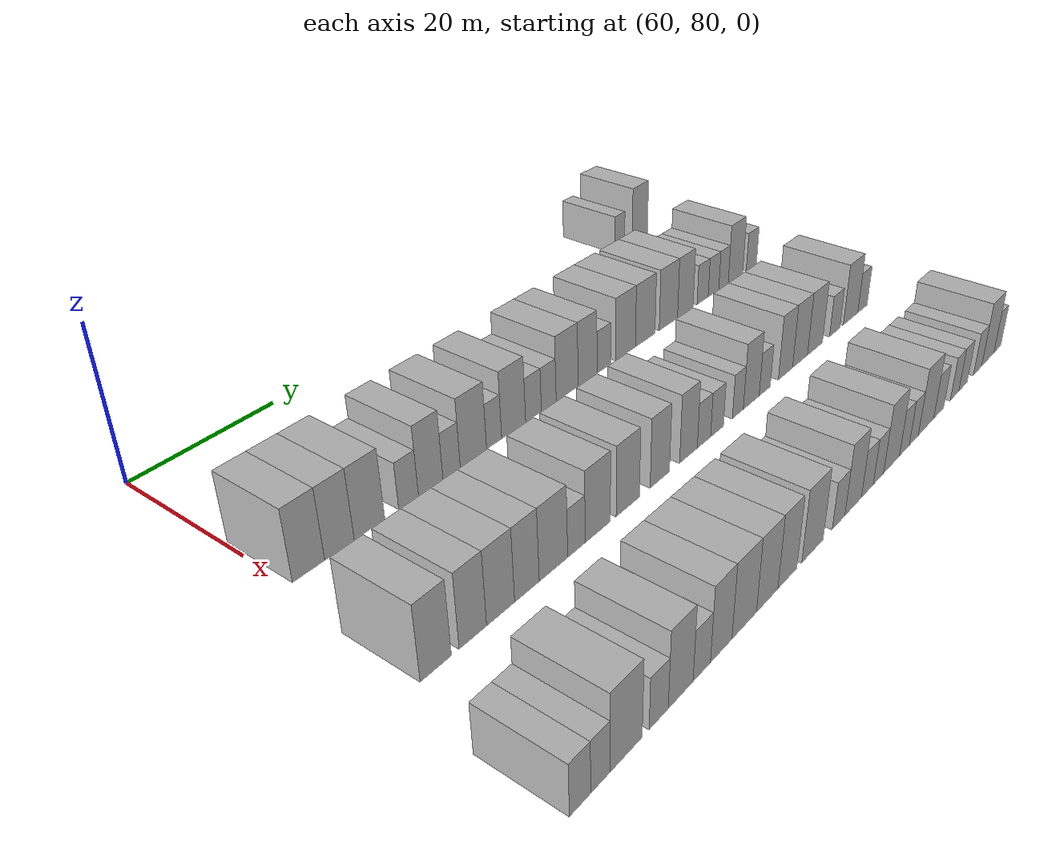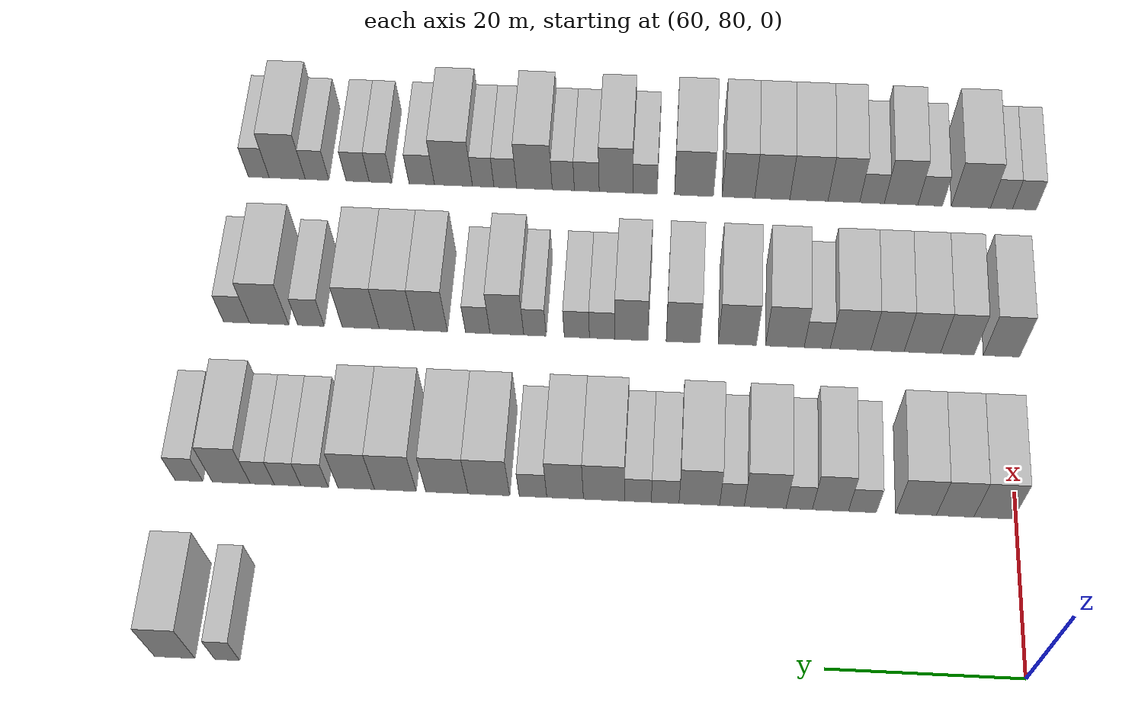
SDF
<sdf version="1.6">
 <world name="default">
  <model name="building_492">
   <static>1</static>
   <pose>63.0000 159.6854 0 0.000000 0.000000 0.000000</pose>
   <link name="link">
    <pose>0 0 3.00 0 0 0</pose>
    <collision name="collision"><geometry><box><size>10.0000 2.5031 6.0000</size></box></geometry></collision>
    <visual name="visual">
     <cast_shadows>0</cast_shadows>
     <geometry><box><size>10.0000 2.5031 6.0000</size></box></geometry>
     <material>
      <script>
       <uri>model://HANNAS_wall/materials/scripts</uri>
       <uri>model://HANNAS_wall/materials/textures</uri>
       <name>vrc/HANNAS_wall</name>
      </script>
     </material>
    </visual>
   </link>
  </model>
  <model name="building_493">
   <static>1</static>
   <pose>63.0000 164.9732 0 0.000000 0.000000 0.000000</pose>
   <link name="link">
    <pose>0 0 4.50 0 0 0</pose>
    <collision name="collision"><geometry><box><size>10.0000 4.0725 9.0000</size></box></geometry></collision>
    <visual name="visual">
     <cast_shadows>0</cast_shadows>
     <geometry><box><size>10.0000 4.0725 9.0000</size></box></geometry>
     <material>
      <script>
       <uri>model://HANNAS_wall/materials/scripts</uri>
       <uri>model://HANNAS_wall/materials/textures</uri>
       <name>vrc/HANNAS_wall</name>
      </script>
     </material>
    </visual>
   </link>
  </model>
  <model name="building_655">
   <static>1</static>
   <pose>82.0000 82.3814 0 0.000000 0.000000 0.000000</pose>
   <link name="link">
    <pose>0 0 4.50 0 0 0</pose>
    <collision name="collision"><geometry><box><size>10.0000 4.0838 9.0000</size></box></geometry></collision>
    <visual name="visual">
     <cast_shadows>0</cast_shadows>
     <geometry><box><size>10.0000 4.0838 9.0000</size></box></geometry>
     <material>
      <script>
       <uri>model://HANNAS_wall/materials/scripts</uri>
       <uri>model://HANNAS_wall/materials/textures</uri>
       <name>vrc/HANNAS_wall</name>
      </script>
     </material>
    </visual>
   </link>
  </model>
  <model name="building_656">
   <static>1</static>
   <pose>82.0000 86.3742 0 0.000000 0.000000 0.000000</pose>
   <link name="link">
    <pose>0 0 4.50 0 0 0</pose>
    <collision name="collision"><geometry><box><size>10.0000 3.9017 9.0000</size></box></geometry></collision>
    <visual name="visual">
     <cast_shadows>0</cast_shadows>
     <geometry><box><size>10.0000 3.9017 9.0000</size></box></geometry>
     <material>
      <script>
       <uri>model://HANNAS_wall/materials/scripts</uri>
       <uri>model://HANNAS_wall/materials/textures</uri>
       <name>vrc/HANNAS_wall</name>
      </script>
     </material>
    </visual>
   </link>
  </model>
  <model name="building_657">
   <static>1</static>
   <pose>82.0000 90.4457 0 0.000000 0.000000 0.000000</pose>
   <link name="link">
    <pose>0 0 4.50 0 0 0</pose>
    <collision name="collision"><geometry><box><size>10.0000 4.2413 9.0000</size></box></geometry></collision>
    <visual name="visual">
     <cast_shadows>0</cast_shadows>
     <geometry><box><size>10.0000 4.2413 9.0000</size></box></geometry>
     <material>
      <script>
       <uri>model://HANNAS_wall/materials/scripts</uri>
       <uri>model://HANNAS_wall/materials/textures</uri>
       <name>vrc/HANNAS_wall</name>
      </script>
     </material>
    </visual>
   </link>
  </model>
  <model name="building_658">
   <static>1</static>
   <pose>82.0000 96.0283 0 0.000000 0.000000 0.000000</pose>
   <link name="link">
    <pose>0 0 3.00 0 0 0</pose>
    <collision name="collision"><geometry><box><size>10.0000 2.9239 6.0000</size></box></geometry></collision>
    <visual name="visual">
     <cast_shadows>0</cast_shadows>
     <geometry><box><size>10.0000 2.9239 6.0000</size></box></geometry>
     <material>
      <script>
       <uri>model://HANNAS_wall/materials/scripts</uri>
       <uri>model://HANNAS_wall/materials/textures</uri>
       <name>vrc/HANNAS_wall</name>
      </script>
     </material>
    </visual>
   </link>
  </model>
  <model name="building_659">
   <static>1</static>
   <pose>82.0000 99.3657 0 0.000000 0.000000 0.000000</pose>
   <link name="link">
    <pose>0 0 4.50 0 0 0</pose>
    <collision name="collision"><geometry><box><size>10.0000 3.7510 9.0000</size></box></geometry></collision>
    <visual name="visual">
     <cast_shadows>0</cast_shadows>
     <geometry><box><size>10.0000 3.7510 9.0000</size></box></geometry>
     <material>
      <script>
       <uri>model://HANNAS_wall/materials/scripts</uri>
       <uri>model://HANNAS_wall/materials/textures</uri>
       <name>vrc/HANNAS_wall</name>
      </script>
     </material>
    </visual>
   </link>
  </model>
  <model name="building_660">
   <static>1</static>
   <pose>82.0000 102.6163 0 0.000000 0.000000 0.000000</pose>
   <link name="link">
    <pose>0 0 3.00 0 0 0</pose>
    <collision name="collision"><geometry><box><size>10.0000 2.7503 6.0000</size></box></geometry></collision>
    <visual name="visual">
     <cast_shadows>0</cast_shadows>
     <geometry><box><size>10.0000 2.7503 6.0000</size></box></geometry>
     <material>
      <script>
       <uri>model://HANNAS_wall/materials/scripts</uri>
       <uri>model://HANNAS_wall/materials/textures</uri>
       <name>vrc/HANNAS_wall</name>
      </script>
     </material>
    </visual>
   </link>
  </model>
  <model name="building_661">
   <static>1</static>
   <pose>82.0000 106.1673 0 0.000000 0.000000 0.000000</pose>
   <link name="link">
    <pose>0 0 4.50 0 0 0</pose>
    <collision name="collision"><geometry><box><size>10.0000 4.3516 9.0000</size></box></geometry></collision>
    <visual name="visual">
     <cast_shadows>0</cast_shadows>
     <geometry><box><size>10.0000 4.3516 9.0000</size></box></geometry>
     <material>
      <script>
       <uri>model://HANNAS_wall/materials/scripts</uri>
       <uri>model://HANNAS_wall/materials/textures</uri>
       <name>vrc/HANNAS_wall</name>
      </script>
     </material>
    </visual>
   </link>
  </model>
  <model name="building_662">
   <static>1</static>
   <pose>82.0000 109.6319 0 0.000000 0.000000 0.000000</pose>
   <link name="link">
    <pose>0 0 3.00 0 0 0</pose>
    <collision name="collision"><geometry><box><size>10.0000 2.5775 6.0000</size></box></geometry></collision>
    <visual name="visual">
     <cast_shadows>0</cast_shadows>
     <geometry><box><size>10.0000 2.5775 6.0000</size></box></geometry>
     <material>
      <script>
       <uri>model://HANNAS_wall/materials/scripts</uri>
       <uri>model://HANNAS_wall/materials/textures</uri>
       <name>vrc/HANNAS_wall</name>
      </script>
     </material>
    </visual>
   </link>
  </model>
  <model name="building_663">
   <static>1</static>
   <pose>82.0000 113.0458 0 0.000000 0.000000 0.000000</pose>
   <link name="link">
    <pose>0 0 4.50 0 0 0</pose>
    <collision name="collision"><geometry><box><size>10.0000 4.2503 9.0000</size></box></geometry></collision>
    <visual name="visual">
     <cast_shadows>0</cast_shadows>
     <geometry><box><size>10.0000 4.2503 9.0000</size></box></geometry>
     <material>
      <script>
       <uri>model://HANNAS_wall/materials/scripts</uri>
       <uri>model://HANNAS_wall/materials/textures</uri>
       <name>vrc/HANNAS_wall</name>
      </script>
     </material>
    </visual>
   </link>
  </model>
  <model name="building_664">
   <static>1</static>
   <pose>82.0000 116.6156 0 0.000000 0.000000 0.000000</pose>
   <link name="link">
    <pose>0 0 3.00 0 0 0</pose>
    <collision name="collision"><geometry><box><size>10.0000 2.8894 6.0000</size></box></geometry></collision>
    <visual name="visual">
     <cast_shadows>0</cast_shadows>
     <geometry><box><size>10.0000 2.8894 6.0000</size></box></geometry>
     <material>
      <script>
       <uri>model://HANNAS_wall/materials/scripts</uri>
       <uri>model://HANNAS_wall/materials/textures</uri>
       <name>vrc/HANNAS_wall</name>
      </script>
     </material>
    </visual>
   </link>
  </model>
  <model name="building_665">
   <static>1</static>
   <pose>82.0000 119.4657 0 0.000000 0.000000 0.000000</pose>
   <link name="link">
    <pose>0 0 3.00 0 0 0</pose>
    <collision name="collision"><geometry><box><size>10.0000 2.8108 6.0000</size></box></geometry></collision>
    <visual name="visual">
     <cast_shadows>0</cast_shadows>
     <geometry><box><size>10.0000 2.8108 6.0000</size></box></geometry>
     <material>
      <script>
       <uri>model://HANNAS_wall/materials/scripts</uri>
       <uri>model://HANNAS_wall/materials/textures</uri>
       <name>vrc/HANNAS_wall</name>
      </script>
     </material>
    </visual>
   </link>
  </model>
  <model name="building_666">
   <static>1</static>
   <pose>82.0000 123.0201 0 0.000000 0.000000 0.000000</pose>
   <link name="link">
    <pose>0 0 4.50 0 0 0</pose>
    <collision name="collision"><geometry><box><size>10.0000 4.2980 9.0000</size></box></geometry></collision>
    <visual name="visual">
     <cast_shadows>0</cast_shadows>
     <geometry><box><size>10.0000 4.2980 9.0000</size></box></geometry>
     <material>
      <script>
       <uri>model://HANNAS_wall/materials/scripts</uri>
       <uri>model://HANNAS_wall/materials/textures</uri>
       <name>vrc/HANNAS_wall</name>
      </script>
     </material>
    </visual>
   </link>
  </model>
  <model name="building_667">
   <static>1</static>
   <pose>82.0000 127.0901 0 0.000000 0.000000 0.000000</pose>
   <link name="link">
    <pose>0 0 4.50 0 0 0</pose>
    <collision name="collision"><geometry><box><size>10.0000 3.8420 9.0000</size></box></geometry></collision>
    <visual name="visual">
     <cast_shadows>0</cast_shadows>
     <geometry><box><size>10.0000 3.8420 9.0000</size></box></geometry>
     <material>
      <script>
       <uri>model://HANNAS_wall/materials/scripts</uri>
       <uri>model://HANNAS_wall/materials/textures</uri>
       <name>vrc/HANNAS_wall</name>
      </script>
     </material>
    </visual>
   </link>
  </model>
  <model name="building_668">
   <static>1</static>
   <pose>82.0000 130.4585 0 0.000000 0.000000 0.000000</pose>
   <link name="link">
    <pose>0 0 3.00 0 0 0</pose>
    <collision name="collision"><geometry><box><size>10.0000 2.8947 6.0000</size></box></geometry></collision>
    <visual name="visual">
     <cast_shadows>0</cast_shadows>
     <geometry><box><size>10.0000 2.8947 6.0000</size></box></geometry>
     <material>
      <script>
       <uri>model://HANNAS_wall/materials/scripts</uri>
       <uri>model://HANNAS_wall/materials/textures</uri>
       <name>vrc/HANNAS_wall</name>
      </script>
     </material>
    </visual>
   </link>
  </model>
  <model name="building_669">
   <static>1</static>
   <pose>82.0000 135.0957 0 0.000000 0.000000 0.000000</pose>
   <link name="link">
    <pose>0 0 4.50 0 0 0</pose>
    <collision name="collision"><geometry><box><size>10.0000 4.3797 9.0000</size></box></geometry></collision>
    <visual name="visual">
     <cast_shadows>0</cast_shadows>
     <geometry><box><size>10.0000 4.3797 9.0000</size></box></geometry>
     <material>
      <script>
       <uri>model://HANNAS_wall/materials/scripts</uri>
       <uri>model://HANNAS_wall/materials/textures</uri>
       <name>vrc/HANNAS_wall</name>
      </script>
     </material>
    </visual>
   </link>
  </model>
  <model name="building_670">
   <static>1</static>
   <pose>82.0000 139.5176 0 0.000000 0.000000 0.000000</pose>
   <link name="link">
    <pose>0 0 4.50 0 0 0</pose>
    <collision name="collision"><geometry><box><size>10.0000 4.4641 9.0000</size></box></geometry></collision>
    <visual name="visual">
     <cast_shadows>0</cast_shadows>
     <geometry><box><size>10.0000 4.4641 9.0000</size></box></geometry>
     <material>
      <script>
       <uri>model://HANNAS_wall/materials/scripts</uri>
       <uri>model://HANNAS_wall/materials/textures</uri>
       <name>vrc/HANNAS_wall</name>
      </script>
     </material>
    </visual>
   </link>
  </model>
  <model name="building_671">
   <static>1</static>
   <pose>82.0000 144.9492 0 0.000000 0.000000 0.000000</pose>
   <link name="link">
    <pose>0 0 4.50 0 0 0</pose>
    <collision name="collision"><geometry><box><size>10.0000 4.3992 9.0000</size></box></geometry></collision>
    <visual name="visual">
     <cast_shadows>0</cast_shadows>
     <geometry><box><size>10.0000 4.3992 9.0000</size></box></geometry>
     <material>
      <script>
       <uri>model://HANNAS_wall/materials/scripts</uri>
       <uri>model://HANNAS_wall/materials/textures</uri>
       <name>vrc/HANNAS_wall</name>
      </script>
     </material>
    </visual>
   </link>
  </model>
  <model name="building_672">
   <static>1</static>
   <pose>82.0000 149.0820 0 0.000000 0.000000 0.000000</pose>
   <link name="link">
    <pose>0 0 4.50 0 0 0</pose>
    <collision name="collision"><geometry><box><size>10.0000 3.8664 9.0000</size></box></geometry></collision>
    <visual name="visual">
     <cast_shadows>0</cast_shadows>
     <geometry><box><size>10.0000 3.8664 9.0000</size></box></geometry>
     <material>
      <script>
       <uri>model://HANNAS_wall/materials/scripts</uri>
       <uri>model://HANNAS_wall/materials/textures</uri>
       <name>vrc/HANNAS_wall</name>
      </script>
     </material>
    </visual>
   </link>
  </model>
  <model name="building_673">
   <static>1</static>
   <pose>82.0000 153.4588 0 0.000000 0.000000 0.000000</pose>
   <link name="link">
    <pose>0 0 3.00 0 0 0</pose>
    <collision name="collision"><geometry><box><size>10.0000 2.8872 6.0000</size></box></geometry></collision>
    <visual name="visual">
     <cast_shadows>0</cast_shadows>
     <geometry><box><size>10.0000 2.8872 6.0000</size></box></geometry>
     <material>
      <script>
       <uri>model://HANNAS_wall/materials/scripts</uri>
       <uri>model://HANNAS_wall/materials/textures</uri>
       <name>vrc/HANNAS_wall</name>
      </script>
     </material>
    </visual>
   </link>
  </model>
  <model name="building_674">
   <static>1</static>
   <pose>82.0000 156.3104 0 0.000000 0.000000 0.000000</pose>
   <link name="link">
    <pose>0 0 3.00 0 0 0</pose>
    <collision name="collision"><geometry><box><size>10.0000 2.8161 6.0000</size></box></geometry></collision>
    <visual name="visual">
     <cast_shadows>0</cast_shadows>
     <geometry><box><size>10.0000 2.8161 6.0000</size></box></geometry>
     <material>
      <script>
       <uri>model://HANNAS_wall/materials/scripts</uri>
       <uri>model://HANNAS_wall/materials/textures</uri>
       <name>vrc/HANNAS_wall</name>
      </script>
     </material>
    </visual>
   </link>
  </model>
  <model name="building_675">
   <static>1</static>
   <pose>82.0000 158.9909 0 0.000000 0.000000 0.000000</pose>
   <link name="link">
    <pose>0 0 3.00 0 0 0</pose>
    <collision name="collision"><geometry><box><size>10.0000 2.5449 6.0000</size></box></geometry></collision>
    <visual name="visual">
     <cast_shadows>0</cast_shadows>
     <geometry><box><size>10.0000 2.5449 6.0000</size></box></geometry>
     <material>
      <script>
       <uri>model://HANNAS_wall/materials/scripts</uri>
       <uri>model://HANNAS_wall/materials/textures</uri>
       <name>vrc/HANNAS_wall</name>
      </script>
     </material>
    </visual>
   </link>
  </model>
  <model name="building_676">
   <static>1</static>
   <pose>82.0000 162.2773 0 0.000000 0.000000 0.000000</pose>
   <link name="link">
    <pose>0 0 4.50 0 0 0</pose>
    <collision name="collision"><geometry><box><size>10.0000 4.0279 9.0000</size></box></geometry></collision>
    <visual name="visual">
     <cast_shadows>0</cast_shadows>
     <geometry><box><size>10.0000 4.0279 9.0000</size></box></geometry>
     <material>
      <script>
       <uri>model://HANNAS_wall/materials/scripts</uri>
       <uri>model://HANNAS_wall/materials/textures</uri>
       <name>vrc/HANNAS_wall</name>
      </script>
     </material>
    </visual>
   </link>
  </model>
  <model name="building_677">
   <static>1</static>
   <pose>82.0000 166.7668 0 0.000000 0.000000 0.000000</pose>
   <link name="link">
    <pose>0 0 3.00 0 0 0</pose>
    <collision name="collision"><geometry><box><size>10.0000 2.9511 6.0000</size></box></geometry></collision>
    <visual name="visual">
     <cast_shadows>0</cast_shadows>
     <geometry><box><size>10.0000 2.9511 6.0000</size></box></geometry>
     <material>
      <script>
       <uri>model://HANNAS_wall/materials/scripts</uri>
       <uri>model://HANNAS_wall/materials/textures</uri>
       <name>vrc/HANNAS_wall</name>
      </script>
     </material>
    </visual>
   </link>
  </model>
  <model name="building_823">
   <static>1</static>
   <pose>101.0000 80.5593 0 0.000000 0.000000 0.000000</pose>
   <link name="link">
    <pose>0 0 4.50 0 0 0</pose>
    <collision name="collision"><geometry><box><size>10.0000 3.9447 9.0000</size></box></geometry></collision>
    <visual name="visual">
     <cast_shadows>0</cast_shadows>
     <geometry><box><size>10.0000 3.9447 9.0000</size></box></geometry>
     <material>
      <script>
       <uri>model://HANNAS_wall/materials/scripts</uri>
       <uri>model://HANNAS_wall/materials/textures</uri>
       <name>vrc/HANNAS_wall</name>
      </script>
     </material>
    </visual>
   </link>
  </model>
  <model name="building_824">
   <static>1</static>
   <pose>101.0000 85.3795 0 0.000000 0.000000 0.000000</pose>
   <link name="link">
    <pose>0 0 4.50 0 0 0</pose>
    <collision name="collision"><geometry><box><size>10.0000 3.6956 9.0000</size></box></geometry></collision>
    <visual name="visual">
     <cast_shadows>0</cast_shadows>
     <geometry><box><size>10.0000 3.6956 9.0000</size></box></geometry>
     <material>
      <script>
       <uri>model://HANNAS_wall/materials/scripts</uri>
       <uri>model://HANNAS_wall/materials/textures</uri>
       <name>vrc/HANNAS_wall</name>
      </script>
     </material>
    </visual>
   </link>
  </model>
  <model name="building_825">
   <static>1</static>
   <pose>101.0000 89.2056 0 0.000000 0.000000 0.000000</pose>
   <link name="link">
    <pose>0 0 4.50 0 0 0</pose>
    <collision name="collision"><geometry><box><size>10.0000 3.9566 9.0000</size></box></geometry></collision>
    <visual name="visual">
     <cast_shadows>0</cast_shadows>
     <geometry><box><size>10.0000 3.9566 9.0000</size></box></geometry>
     <material>
      <script>
       <uri>model://HANNAS_wall/materials/scripts</uri>
       <uri>model://HANNAS_wall/materials/textures</uri>
       <name>vrc/HANNAS_wall</name>
      </script>
     </material>
    </visual>
   </link>
  </model>
  <model name="building_826">
   <static>1</static>
   <pose>101.0000 93.0046 0 0.000000 0.000000 0.000000</pose>
   <link name="link">
    <pose>0 0 4.50 0 0 0</pose>
    <collision name="collision"><geometry><box><size>10.0000 3.6415 9.0000</size></box></geometry></collision>
    <visual name="visual">
     <cast_shadows>0</cast_shadows>
     <geometry><box><size>10.0000 3.6415 9.0000</size></box></geometry>
     <material>
      <script>
       <uri>model://HANNAS_wall/materials/scripts</uri>
       <uri>model://HANNAS_wall/materials/textures</uri>
       <name>vrc/HANNAS_wall</name>
      </script>
     </material>
    </visual>
   </link>
  </model>
  <model name="building_827">
   <static>1</static>
   <pose>101.0000 97.0363 0 0.000000 0.000000 0.000000</pose>
   <link name="link">
    <pose>0 0 4.50 0 0 0</pose>
    <collision name="collision"><geometry><box><size>10.0000 4.4219 9.0000</size></box></geometry></collision>
    <visual name="visual">
     <cast_shadows>0</cast_shadows>
     <geometry><box><size>10.0000 4.4219 9.0000</size></box></geometry>
     <material>
      <script>
       <uri>model://HANNAS_wall/materials/scripts</uri>
       <uri>model://HANNAS_wall/materials/textures</uri>
       <name>vrc/HANNAS_wall</name>
      </script>
     </material>
    </visual>
   </link>
  </model>
  <model name="building_828">
   <static>1</static>
   <pose>101.0000 100.6766 0 0.000000 0.000000 0.000000</pose>
   <link name="link">
    <pose>0 0 3.00 0 0 0</pose>
    <collision name="collision"><geometry><box><size>10.0000 2.8587 6.0000</size></box></geometry></collision>
    <visual name="visual">
     <cast_shadows>0</cast_shadows>
     <geometry><box><size>10.0000 2.8587 6.0000</size></box></geometry>
     <material>
      <script>
       <uri>model://HANNAS_wall/materials/scripts</uri>
       <uri>model://HANNAS_wall/materials/textures</uri>
       <name>vrc/HANNAS_wall</name>
      </script>
     </material>
    </visual>
   </link>
  </model>
  <model name="building_829">
   <static>1</static>
   <pose>101.0000 104.2255 0 0.000000 0.000000 0.000000</pose>
   <link name="link">
    <pose>0 0 4.50 0 0 0</pose>
    <collision name="collision"><geometry><box><size>10.0000 4.2391 9.0000</size></box></geometry></collision>
    <visual name="visual">
     <cast_shadows>0</cast_shadows>
     <geometry><box><size>10.0000 4.2391 9.0000</size></box></geometry>
     <material>
      <script>
       <uri>model://HANNAS_wall/materials/scripts</uri>
       <uri>model://HANNAS_wall/materials/textures</uri>
       <name>vrc/HANNAS_wall</name>
      </script>
     </material>
    </visual>
   </link>
  </model>
  <model name="building_830">
   <static>1</static>
   <pose>101.0000 109.4386 0 0.000000 0.000000 0.000000</pose>
   <link name="link">
    <pose>0 0 4.50 0 0 0</pose>
    <collision name="collision"><geometry><box><size>10.0000 4.1871 9.0000</size></box></geometry></collision>
    <visual name="visual">
     <cast_shadows>0</cast_shadows>
     <geometry><box><size>10.0000 4.1871 9.0000</size></box></geometry>
     <material>
      <script>
       <uri>model://HANNAS_wall/materials/scripts</uri>
       <uri>model://HANNAS_wall/materials/textures</uri>
       <name>vrc/HANNAS_wall</name>
      </script>
     </material>
    </visual>
   </link>
  </model>
  <model name="building_831">
   <static>1</static>
   <pose>101.0000 115.3856 0 0.000000 0.000000 0.000000</pose>
   <link name="link">
    <pose>0 0 4.50 0 0 0</pose>
    <collision name="collision"><geometry><box><size>10.0000 3.7068 9.0000</size></box></geometry></collision>
    <visual name="visual">
     <cast_shadows>0</cast_shadows>
     <geometry><box><size>10.0000 3.7068 9.0000</size></box></geometry>
     <material>
      <script>
       <uri>model://HANNAS_wall/materials/scripts</uri>
       <uri>model://HANNAS_wall/materials/textures</uri>
       <name>vrc/HANNAS_wall</name>
      </script>
     </material>
    </visual>
   </link>
  </model>
  <model name="building_832">
   <static>1</static>
   <pose>101.0000 121.0454 0 0.000000 0.000000 0.000000</pose>
   <link name="link">
    <pose>0 0 4.50 0 0 0</pose>
    <collision name="collision"><geometry><box><size>10.0000 3.6127 9.0000</size></box></geometry></collision>
    <visual name="visual">
     <cast_shadows>0</cast_shadows>
     <geometry><box><size>10.0000 3.6127 9.0000</size></box></geometry>
     <material>
      <script>
       <uri>model://HANNAS_wall/materials/scripts</uri>
       <uri>model://HANNAS_wall/materials/textures</uri>
       <name>vrc/HANNAS_wall</name>
      </script>
     </material>
    </visual>
   </link>
  </model>
  <model name="building_833">
   <static>1</static>
   <pose>101.0000 124.2596 0 0.000000 0.000000 0.000000</pose>
   <link name="link">
    <pose>0 0 3.00 0 0 0</pose>
    <collision name="collision"><geometry><box><size>10.0000 2.8157 6.0000</size></box></geometry></collision>
    <visual name="visual">
     <cast_shadows>0</cast_shadows>
     <geometry><box><size>10.0000 2.8157 6.0000</size></box></geometry>
     <material>
      <script>
       <uri>model://HANNAS_wall/materials/scripts</uri>
       <uri>model://HANNAS_wall/materials/textures</uri>
       <name>vrc/HANNAS_wall</name>
      </script>
     </material>
    </visual>
   </link>
  </model>
  <model name="building_834">
   <static>1</static>
   <pose>101.0000 127.0528 0 0.000000 0.000000 0.000000</pose>
   <link name="link">
    <pose>0 0 3.00 0 0 0</pose>
    <collision name="collision"><geometry><box><size>10.0000 2.7708 6.0000</size></box></geometry></collision>
    <visual name="visual">
     <cast_shadows>0</cast_shadows>
     <geometry><box><size>10.0000 2.7708 6.0000</size></box></geometry>
     <material>
      <script>
       <uri>model://HANNAS_wall/materials/scripts</uri>
       <uri>model://HANNAS_wall/materials/textures</uri>
       <name>vrc/HANNAS_wall</name>
      </script>
     </material>
    </visual>
   </link>
  </model>
  <model name="building_835">
   <static>1</static>
   <pose>101.0000 131.6722 0 0.000000 0.000000 0.000000</pose>
   <link name="link">
    <pose>0 0 3.00 0 0 0</pose>
    <collision name="collision"><geometry><box><size>10.0000 2.4679 6.0000</size></box></geometry></collision>
    <visual name="visual">
     <cast_shadows>0</cast_shadows>
     <geometry><box><size>10.0000 2.4679 6.0000</size></box></geometry>
     <material>
      <script>
       <uri>model://HANNAS_wall/materials/scripts</uri>
       <uri>model://HANNAS_wall/materials/textures</uri>
       <name>vrc/HANNAS_wall</name>
      </script>
     </material>
    </visual>
   </link>
  </model>
  <model name="building_836">
   <static>1</static>
   <pose>101.0000 134.7678 0 0.000000 0.000000 0.000000</pose>
   <link name="link">
    <pose>0 0 4.50 0 0 0</pose>
    <collision name="collision"><geometry><box><size>10.0000 3.7233 9.0000</size></box></geometry></collision>
    <visual name="visual">
     <cast_shadows>0</cast_shadows>
     <geometry><box><size>10.0000 3.7233 9.0000</size></box></geometry>
     <material>
      <script>
       <uri>model://HANNAS_wall/materials/scripts</uri>
       <uri>model://HANNAS_wall/materials/textures</uri>
       <name>vrc/HANNAS_wall</name>
      </script>
     </material>
    </visual>
   </link>
  </model>
  <model name="building_837">
   <static>1</static>
   <pose>101.0000 137.9793 0 0.000000 0.000000 0.000000</pose>
   <link name="link">
    <pose>0 0 3.00 0 0 0</pose>
    <collision name="collision"><geometry><box><size>10.0000 2.6997 6.0000</size></box></geometry></collision>
    <visual name="visual">
     <cast_shadows>0</cast_shadows>
     <geometry><box><size>10.0000 2.6997 6.0000</size></box></geometry>
     <material>
      <script>
       <uri>model://HANNAS_wall/materials/scripts</uri>
       <uri>model://HANNAS_wall/materials/textures</uri>
       <name>vrc/HANNAS_wall</name>
      </script>
     </material>
    </visual>
   </link>
  </model>
  <model name="building_838">
   <static>1</static>
   <pose>101.0000 143.1390 0 0.000000 0.000000 0.000000</pose>
   <link name="link">
    <pose>0 0 4.50 0 0 0</pose>
    <collision name="collision"><geometry><box><size>10.0000 3.6196 9.0000</size></box></geometry></collision>
    <visual name="visual">
     <cast_shadows>0</cast_shadows>
     <geometry><box><size>10.0000 3.6196 9.0000</size></box></geometry>
     <material>
      <script>
       <uri>model://HANNAS_wall/materials/scripts</uri>
       <uri>model://HANNAS_wall/materials/textures</uri>
       <name>vrc/HANNAS_wall</name>
      </script>
     </material>
    </visual>
   </link>
  </model>
  <model name="building_839">
   <static>1</static>
   <pose>101.0000 146.9132 0 0.000000 0.000000 0.000000</pose>
   <link name="link">
    <pose>0 0 4.50 0 0 0</pose>
    <collision name="collision"><geometry><box><size>10.0000 3.9289 9.0000</size></box></geometry></collision>
    <visual name="visual">
     <cast_shadows>0</cast_shadows>
     <geometry><box><size>10.0000 3.9289 9.0000</size></box></geometry>
     <material>
      <script>
       <uri>model://HANNAS_wall/materials/scripts</uri>
       <uri>model://HANNAS_wall/materials/textures</uri>
       <name>vrc/HANNAS_wall</name>
      </script>
     </material>
    </visual>
   </link>
  </model>
  <model name="building_840">
   <static>1</static>
   <pose>101.0000 150.9231 0 0.000000 0.000000 0.000000</pose>
   <link name="link">
    <pose>0 0 4.50 0 0 0</pose>
    <collision name="collision"><geometry><box><size>10.0000 4.0909 9.0000</size></box></geometry></collision>
    <visual name="visual">
     <cast_shadows>0</cast_shadows>
     <geometry><box><size>10.0000 4.0909 9.0000</size></box></geometry>
     <material>
      <script>
       <uri>model://HANNAS_wall/materials/scripts</uri>
       <uri>model://HANNAS_wall/materials/textures</uri>
       <name>vrc/HANNAS_wall</name>
      </script>
     </material>
    </visual>
   </link>
  </model>
  <model name="building_841">
   <static>1</static>
   <pose>101.0000 156.4420 0 0.000000 0.000000 0.000000</pose>
   <link name="link">
    <pose>0 0 3.00 0 0 0</pose>
    <collision name="collision"><geometry><box><size>10.0000 2.9469 6.0000</size></box></geometry></collision>
    <visual name="visual">
     <cast_shadows>0</cast_shadows>
     <geometry><box><size>10.0000 2.9469 6.0000</size></box></geometry>
     <material>
      <script>
       <uri>model://HANNAS_wall/materials/scripts</uri>
       <uri>model://HANNAS_wall/materials/textures</uri>
       <name>vrc/HANNAS_wall</name>
      </script>
     </material>
    </visual>
   </link>
  </model>
  <model name="building_842">
   <static>1</static>
   <pose>101.0000 161.0866 0 0.000000 0.000000 0.000000</pose>
   <link name="link">
    <pose>0 0 4.50 0 0 0</pose>
    <collision name="collision"><geometry><box><size>10.0000 4.3422 9.0000</size></box></geometry></collision>
    <visual name="visual">
     <cast_shadows>0</cast_shadows>
     <geometry><box><size>10.0000 4.3422 9.0000</size></box></geometry>
     <material>
      <script>
       <uri>model://HANNAS_wall/materials/scripts</uri>
       <uri>model://HANNAS_wall/materials/textures</uri>
       <name>vrc/HANNAS_wall</name>
      </script>
     </material>
    </visual>
   </link>
  </model>
  <model name="building_843">
   <static>1</static>
   <pose>101.0000 164.7007 0 0.000000 0.000000 0.000000</pose>
   <link name="link">
    <pose>0 0 3.00 0 0 0</pose>
    <collision name="collision"><geometry><box><size>10.0000 2.8859 6.0000</size></box></geometry></collision>
    <visual name="visual">
     <cast_shadows>0</cast_shadows>
     <geometry><box><size>10.0000 2.8859 6.0000</size></box></geometry>
     <material>
      <script>
       <uri>model://HANNAS_wall/materials/scripts</uri>
       <uri>model://HANNAS_wall/materials/textures</uri>
       <name>vrc/HANNAS_wall</name>
      </script>
     </material>
    </visual>
   </link>
  </model>
  <model name="building_998">
   <static>1</static>
   <pose>120.0000 76.9487 0 0.000000 0.000000 0.000000</pose>
   <link name="link">
    <pose>0 0 3.00 0 0 0</pose>
    <collision name="collision"><geometry><box><size>10.0000 2.7020 6.0000</size></box></geometry></collision>
    <visual name="visual">
     <cast_shadows>0</cast_shadows>
     <geometry><box><size>10.0000 2.7020 6.0000</size></box></geometry>
     <material>
      <script>
       <uri>model://HANNAS_wall/materials/scripts</uri>
       <uri>model://HANNAS_wall/materials/textures</uri>
       <name>vrc/HANNAS_wall</name>
      </script>
     </material>
    </visual>
   </link>
  </model>
  <model name="building_999">
   <static>1</static>
   <pose>120.0000 79.5490 0 0.000000 0.000000 0.000000</pose>
   <link name="link">
    <pose>0 0 3.00 0 0 0</pose>
    <collision name="collision"><geometry><box><size>10.0000 2.4986 6.0000</size></box></geometry></collision>
    <visual name="visual">
     <cast_shadows>0</cast_shadows>
     <geometry><box><size>10.0000 2.4986 6.0000</size></box></geometry>
     <material>
      <script>
       <uri>model://HANNAS_wall/materials/scripts</uri>
       <uri>model://HANNAS_wall/materials/textures</uri>
       <name>vrc/HANNAS_wall</name>
      </script>
     </material>
    </visual>
   </link>
  </model>
  <model name="building_1000">
   <static>1</static>
   <pose>120.0000 83.0377 0 0.000000 0.000000 0.000000</pose>
   <link name="link">
    <pose>0 0 4.50 0 0 0</pose>
    <collision name="collision"><geometry><box><size>10.0000 4.4788 9.0000</size></box></geometry></collision>
    <visual name="visual">
     <cast_shadows>0</cast_shadows>
     <geometry><box><size>10.0000 4.4788 9.0000</size></box></geometry>
     <material>
      <script>
       <uri>model://HANNAS_wall/materials/scripts</uri>
       <uri>model://HANNAS_wall/materials/textures</uri>
       <name>vrc/HANNAS_wall</name>
      </script>
     </material>
    </visual>
   </link>
  </model>
  <model name="building_1001">
   <static>1</static>
   <pose>120.0000 87.6883 0 0.000000 0.000000 0.000000</pose>
   <link name="link">
    <pose>0 0 3.00 0 0 0</pose>
    <collision name="collision"><geometry><box><size>10.0000 2.8226 6.0000</size></box></geometry></collision>
    <visual name="visual">
     <cast_shadows>0</cast_shadows>
     <geometry><box><size>10.0000 2.8226 6.0000</size></box></geometry>
     <material>
      <script>
       <uri>model://HANNAS_wall/materials/scripts</uri>
       <uri>model://HANNAS_wall/materials/textures</uri>
       <name>vrc/HANNAS_wall</name>
      </script>
     </material>
    </visual>
   </link>
  </model>
  <model name="building_1002">
   <static>1</static>
   <pose>120.0000 91.0208 0 0.000000 0.000000 0.000000</pose>
   <link name="link">
    <pose>0 0 4.50 0 0 0</pose>
    <collision name="collision"><geometry><box><size>10.0000 3.8423 9.0000</size></box></geometry></collision>
    <visual name="visual">
     <cast_shadows>0</cast_shadows>
     <geometry><box><size>10.0000 3.8423 9.0000</size></box></geometry>
     <material>
      <script>
       <uri>model://HANNAS_wall/materials/scripts</uri>
       <uri>model://HANNAS_wall/materials/textures</uri>
       <name>vrc/HANNAS_wall</name>
      </script>
     </material>
    </visual>
   </link>
  </model>
  <model name="building_1003">
   <static>1</static>
   <pose>120.0000 94.3509 0 0.000000 0.000000 0.000000</pose>
   <link name="link">
    <pose>0 0 3.00 0 0 0</pose>
    <collision name="collision"><geometry><box><size>10.0000 2.8179 6.0000</size></box></geometry></collision>
    <visual name="visual">
     <cast_shadows>0</cast_shadows>
     <geometry><box><size>10.0000 2.8179 6.0000</size></box></geometry>
     <material>
      <script>
       <uri>model://HANNAS_wall/materials/scripts</uri>
       <uri>model://HANNAS_wall/materials/textures</uri>
       <name>vrc/HANNAS_wall</name>
      </script>
     </material>
    </visual>
   </link>
  </model>
  <model name="building_1004">
   <static>1</static>
   <pose>120.0000 97.5743 0 0.000000 0.000000 0.000000</pose>
   <link name="link">
    <pose>0 0 4.50 0 0 0</pose>
    <collision name="collision"><geometry><box><size>10.0000 3.6288 9.0000</size></box></geometry></collision>
    <visual name="visual">
     <cast_shadows>0</cast_shadows>
     <geometry><box><size>10.0000 3.6288 9.0000</size></box></geometry>
     <material>
      <script>
       <uri>model://HANNAS_wall/materials/scripts</uri>
       <uri>model://HANNAS_wall/materials/textures</uri>
       <name>vrc/HANNAS_wall</name>
      </script>
     </material>
    </visual>
   </link>
  </model>
  <model name="building_1005">
   <static>1</static>
   <pose>120.0000 101.5789 0 0.000000 0.000000 0.000000</pose>
   <link name="link">
    <pose>0 0 4.50 0 0 0</pose>
    <collision name="collision"><geometry><box><size>10.0000 4.3803 9.0000</size></box></geometry></collision>
    <visual name="visual">
     <cast_shadows>0</cast_shadows>
     <geometry><box><size>10.0000 4.3803 9.0000</size></box></geometry>
     <material>
      <script>
       <uri>model://HANNAS_wall/materials/scripts</uri>
       <uri>model://HANNAS_wall/materials/textures</uri>
       <name>vrc/HANNAS_wall</name>
      </script>
     </material>
    </visual>
   </link>
  </model>
  <model name="building_1006">
   <static>1</static>
   <pose>120.0000 105.7822 0 0.000000 0.000000 0.000000</pose>
   <link name="link">
    <pose>0 0 4.50 0 0 0</pose>
    <collision name="collision"><geometry><box><size>10.0000 4.0264 9.0000</size></box></geometry></collision>
    <visual name="visual">
     <cast_shadows>0</cast_shadows>
     <geometry><box><size>10.0000 4.0264 9.0000</size></box></geometry>
     <material>
      <script>
       <uri>model://HANNAS_wall/materials/scripts</uri>
       <uri>model://HANNAS_wall/materials/textures</uri>
       <name>vrc/HANNAS_wall</name>
      </script>
     </material>
    </visual>
   </link>
  </model>
  <model name="building_1007">
   <static>1</static>
   <pose>120.0000 109.6639 0 0.000000 0.000000 0.000000</pose>
   <link name="link">
    <pose>0 0 4.50 0 0 0</pose>
    <collision name="collision"><geometry><box><size>10.0000 3.7371 9.0000</size></box></geometry></collision>
    <visual name="visual">
     <cast_shadows>0</cast_shadows>
     <geometry><box><size>10.0000 3.7371 9.0000</size></box></geometry>
     <material>
      <script>
       <uri>model://HANNAS_wall/materials/scripts</uri>
       <uri>model://HANNAS_wall/materials/textures</uri>
       <name>vrc/HANNAS_wall</name>
      </script>
     </material>
    </visual>
   </link>
  </model>
  <model name="building_1008">
   <static>1</static>
   <pose>120.0000 114.7705 0 0.000000 0.000000 0.000000</pose>
   <link name="link">
    <pose>0 0 4.50 0 0 0</pose>
    <collision name="collision"><geometry><box><size>10.0000 4.4761 9.0000</size></box></geometry></collision>
    <visual name="visual">
     <cast_shadows>0</cast_shadows>
     <geometry><box><size>10.0000 4.4761 9.0000</size></box></geometry>
     <material>
      <script>
       <uri>model://HANNAS_wall/materials/scripts</uri>
       <uri>model://HANNAS_wall/materials/textures</uri>
       <name>vrc/HANNAS_wall</name>
      </script>
     </material>
    </visual>
   </link>
  </model>
  <model name="building_1009">
   <static>1</static>
   <pose>120.0000 120.4164 0 0.000000 0.000000 0.000000</pose>
   <link name="link">
    <pose>0 0 3.00 0 0 0</pose>
    <collision name="collision"><geometry><box><size>10.0000 2.8157 6.0000</size></box></geometry></collision>
    <visual name="visual">
     <cast_shadows>0</cast_shadows>
     <geometry><box><size>10.0000 2.8157 6.0000</size></box></geometry>
     <material>
      <script>
       <uri>model://HANNAS_wall/materials/scripts</uri>
       <uri>model://HANNAS_wall/materials/textures</uri>
       <name>vrc/HANNAS_wall</name>
      </script>
     </material>
    </visual>
   </link>
  </model>
  <model name="building_1010">
   <static>1</static>
   <pose>120.0000 123.7500 0 0.000000 0.000000 0.000000</pose>
   <link name="link">
    <pose>0 0 4.50 0 0 0</pose>
    <collision name="collision"><geometry><box><size>10.0000 3.8515 9.0000</size></box></geometry></collision>
    <visual name="visual">
     <cast_shadows>0</cast_shadows>
     <geometry><box><size>10.0000 3.8515 9.0000</size></box></geometry>
     <material>
      <script>
       <uri>model://HANNAS_wall/materials/scripts</uri>
       <uri>model://HANNAS_wall/materials/textures</uri>
       <name>vrc/HANNAS_wall</name>
      </script>
     </material>
    </visual>
   </link>
  </model>
  <model name="building_1011">
   <static>1</static>
   <pose>120.0000 127.1100 0 0.000000 0.000000 0.000000</pose>
   <link name="link">
    <pose>0 0 3.00 0 0 0</pose>
    <collision name="collision"><geometry><box><size>10.0000 2.8685 6.0000</size></box></geometry></collision>
    <visual name="visual">
     <cast_shadows>0</cast_shadows>
     <geometry><box><size>10.0000 2.8685 6.0000</size></box></geometry>
     <material>
      <script>
       <uri>model://HANNAS_wall/materials/scripts</uri>
       <uri>model://HANNAS_wall/materials/textures</uri>
       <name>vrc/HANNAS_wall</name>
      </script>
     </material>
    </visual>
   </link>
  </model>
  <model name="building_1012">
   <static>1</static>
   <pose>120.0000 129.8185 0 0.000000 0.000000 0.000000</pose>
   <link name="link">
    <pose>0 0 3.00 0 0 0</pose>
    <collision name="collision"><geometry><box><size>10.0000 2.5484 6.0000</size></box></geometry></collision>
    <visual name="visual">
     <cast_shadows>0</cast_shadows>
     <geometry><box><size>10.0000 2.5484 6.0000</size></box></geometry>
     <material>
      <script>
       <uri>model://HANNAS_wall/materials/scripts</uri>
       <uri>model://HANNAS_wall/materials/textures</uri>
       <name>vrc/HANNAS_wall</name>
      </script>
     </material>
    </visual>
   </link>
  </model>
  <model name="building_1013">
   <static>1</static>
   <pose>120.0000 133.1484 0 0.000000 0.000000 0.000000</pose>
   <link name="link">
    <pose>0 0 4.50 0 0 0</pose>
    <collision name="collision"><geometry><box><size>10.0000 4.1115 9.0000</size></box></geometry></collision>
    <visual name="visual">
     <cast_shadows>0</cast_shadows>
     <geometry><box><size>10.0000 4.1115 9.0000</size></box></geometry>
     <material>
      <script>
       <uri>model://HANNAS_wall/materials/scripts</uri>
       <uri>model://HANNAS_wall/materials/textures</uri>
       <name>vrc/HANNAS_wall</name>
      </script>
     </material>
    </visual>
   </link>
  </model>
  <model name="building_1014">
   <static>1</static>
   <pose>120.0000 136.5132 0 0.000000 0.000000 0.000000</pose>
   <link name="link">
    <pose>0 0 3.00 0 0 0</pose>
    <collision name="collision"><geometry><box><size>10.0000 2.6180 6.0000</size></box></geometry></collision>
    <visual name="visual">
     <cast_shadows>0</cast_shadows>
     <geometry><box><size>10.0000 2.6180 6.0000</size></box></geometry>
     <material>
      <script>
       <uri>model://HANNAS_wall/materials/scripts</uri>
       <uri>model://HANNAS_wall/materials/textures</uri>
       <name>vrc/HANNAS_wall</name>
      </script>
     </material>
    </visual>
   </link>
  </model>
  <model name="building_1015">
   <static>1</static>
   <pose>120.0000 139.0644 0 0.000000 0.000000 0.000000</pose>
   <link name="link">
    <pose>0 0 3.00 0 0 0</pose>
    <collision name="collision"><geometry><box><size>10.0000 2.4845 6.0000</size></box></geometry></collision>
    <visual name="visual">
     <cast_shadows>0</cast_shadows>
     <geometry><box><size>10.0000 2.4845 6.0000</size></box></geometry>
     <material>
      <script>
       <uri>model://HANNAS_wall/materials/scripts</uri>
       <uri>model://HANNAS_wall/materials/textures</uri>
       <name>vrc/HANNAS_wall</name>
      </script>
     </material>
    </visual>
   </link>
  </model>
  <model name="building_1016">
   <static>1</static>
   <pose>120.0000 142.5040 0 0.000000 0.000000 0.000000</pose>
   <link name="link">
    <pose>0 0 4.50 0 0 0</pose>
    <collision name="collision"><geometry><box><size>10.0000 4.3946 9.0000</size></box></geometry></collision>
    <visual name="visual">
     <cast_shadows>0</cast_shadows>
     <geometry><box><size>10.0000 4.3946 9.0000</size></box></geometry>
     <material>
      <script>
       <uri>model://HANNAS_wall/materials/scripts</uri>
       <uri>model://HANNAS_wall/materials/textures</uri>
       <name>vrc/HANNAS_wall</name>
      </script>
     </material>
    </visual>
   </link>
  </model>
  <model name="building_1017">
   <static>1</static>
   <pose>120.0000 146.1713 0 0.000000 0.000000 0.000000</pose>
   <link name="link">
    <pose>0 0 3.00 0 0 0</pose>
    <collision name="collision"><geometry><box><size>10.0000 2.9401 6.0000</size></box></geometry></collision>
    <visual name="visual">
     <cast_shadows>0</cast_shadows>
     <geometry><box><size>10.0000 2.9401 6.0000</size></box></geometry>
     <material>
      <script>
       <uri>model://HANNAS_wall/materials/scripts</uri>
       <uri>model://HANNAS_wall/materials/textures</uri>
       <name>vrc/HANNAS_wall</name>
      </script>
     </material>
    </visual>
   </link>
  </model>
  <model name="building_1018">
   <static>1</static>
   <pose>120.0000 150.9533 0 0.000000 0.000000 0.000000</pose>
   <link name="link">
    <pose>0 0 3.00 0 0 0</pose>
    <collision name="collision"><geometry><box><size>10.0000 2.6238 6.0000</size></box></geometry></collision>
    <visual name="visual">
     <cast_shadows>0</cast_shadows>
     <geometry><box><size>10.0000 2.6238 6.0000</size></box></geometry>
     <material>
      <script>
       <uri>model://HANNAS_wall/materials/scripts</uri>
       <uri>model://HANNAS_wall/materials/textures</uri>
       <name>vrc/HANNAS_wall</name>
      </script>
     </material>
    </visual>
   </link>
  </model>
  <model name="building_1019">
   <static>1</static>
   <pose>120.0000 153.6059 0 0.000000 0.000000 0.000000</pose>
   <link name="link">
    <pose>0 0 3.00 0 0 0</pose>
    <collision name="collision"><geometry><box><size>10.0000 2.6815 6.0000</size></box></geometry></collision>
    <visual name="visual">
     <cast_shadows>0</cast_shadows>
     <geometry><box><size>10.0000 2.6815 6.0000</size></box></geometry>
     <material>
      <script>
       <uri>model://HANNAS_wall/materials/scripts</uri>
       <uri>model://HANNAS_wall/materials/textures</uri>
       <name>vrc/HANNAS_wall</name>
      </script>
     </material>
    </visual>
   </link>
  </model>
  <model name="building_1020">
   <static>1</static>
   <pose>120.0000 158.3202 0 0.000000 0.000000 0.000000</pose>
   <link name="link">
    <pose>0 0 3.00 0 0 0</pose>
    <collision name="collision"><geometry><box><size>10.0000 2.7470 6.0000</size></box></geometry></collision>
    <visual name="visual">
     <cast_shadows>0</cast_shadows>
     <geometry><box><size>10.0000 2.7470 6.0000</size></box></geometry>
     <material>
      <script>
       <uri>model://HANNAS_wall/materials/scripts</uri>
       <uri>model://HANNAS_wall/materials/textures</uri>
       <name>vrc/HANNAS_wall</name>
      </script>
     </material>
    </visual>
   </link>
  </model>
  <model name="building_1021">
   <static>1</static>
   <pose>120.0000 161.7864 0 0.000000 0.000000 0.000000</pose>
   <link name="link">
    <pose>0 0 4.50 0 0 0</pose>
    <collision name="collision"><geometry><box><size>10.0000 4.1855 9.0000</size></box></geometry></collision>
    <visual name="visual">
     <cast_shadows>0</cast_shadows>
     <geometry><box><size>10.0000 4.1855 9.0000</size></box></geometry>
     <material>
      <script>
       <uri>model://HANNAS_wall/materials/scripts</uri>
       <uri>model://HANNAS_wall/materials/textures</uri>
       <name>vrc/HANNAS_wall</name>
      </script>
     </material>
    </visual>
   </link>
  </model>
  <model name="building_1022">
   <static>1</static>
   <pose>120.0000 165.0931 0 0.000000 0.000000 0.000000</pose>
   <link name="link">
    <pose>0 0 3.00 0 0 0</pose>
    <collision name="collision"><geometry><box><size>10.0000 2.4278 6.0000</size></box></geometry></collision>
    <visual name="visual">
     <cast_shadows>0</cast_shadows>
     <geometry><box><size>10.0000 2.4278 6.0000</size></box></geometry>
     <material>
      <script>
       <uri>model://HANNAS_wall/materials/scripts</uri>
       <uri>model://HANNAS_wall/materials/textures</uri>
       <name>vrc/HANNAS_wall</name>
      </script>
     </material>
    </visual>
   </link>
  </model>
 </world>
</sdf>
